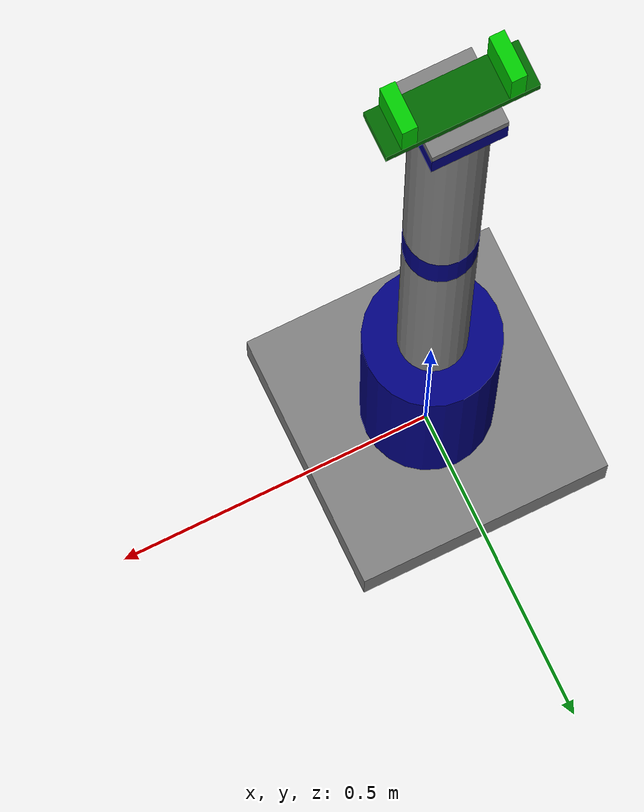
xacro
<?xml version="1.0"?>
<robot xmlns:xacro="http://www.ros.org/wiki/xacro" name="my_arm_robot">
    <xacro:arg name="initial_positions_file" default="initial_positions.yaml" />

    <!-- Import my_arm_robot urdf file -->
    <xacro:include filename="$(find my_robot_description)/urdf/my_robot.urdf.xacro" />

    <!-- Import control_xacro -->
    <xacro:include filename="my_arm_robot.ros2_control.xacro" />

    <xacro:my_arm_robot_ros2_control name="FakeSystem" initial_positions_file="$(arg initial_positions_file)"/>

</robot>

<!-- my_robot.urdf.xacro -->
<robot name="my_arm_robot"
    xmlns:xacro="http://www.ros.org/wiki/xacro">

    <xacro:include filename="common_properties.xacro"/>
    <xacro:include filename="arm.urdf.xacro"/>

    <xacro:include filename="gripper.xacro"/>

    <xacro:include filename="my_arm_robot.ros2_control.xacro"/>

    <joint name="gripper_base_joint" type="fixed">
        <parent link="tool_link"/>
        <child link="gripper_base_link"/>
        <origin xyz="0 0 0" rpy="0 0 0"/>
    </joint>
</robot>

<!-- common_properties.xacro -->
<robot xmlns:xacro="http://www.ros.org/wiki/xacro">

    <material name="grey">
        <color rgba="0.5 0.5 0.5 1"/>
    </material>

    <material name="blue">
        <color rgba="0 0 0.5 1"/>
    </material>

    <material name="dark_green">
        <color rgba="0 0.4 0 1"/>
    </material>

    <material name="light_green">
        <color rgba="0 0.8 0 1"/>
    </material>

</robot>

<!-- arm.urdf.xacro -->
<robot xmlns:xacro="http://www.ros.org/wiki/xacro">

    <link name="base_link">
        <visual>
            <geometry>
                <box size="0.4 0.4 0.1"/>
            </geometry>
            <origin xyz="0 0 0.05" rpy="0 0 0"/>
            <material name="grey"/>
        </visual>
        <collision>
            <geometry>
                <box size="0.4 0.4 0.1"/>
            </geometry>
            <origin xyz="0 0 0.05" rpy="0 0 0"/>
        </collision>
    </link>

    <link name="shoulder_link">
        <visual>
            <geometry>
                <cylinder radius="0.1" length="0.5"/>
            </geometry>
            <origin xyz="0 0 0.25" rpy="0 0 0"/>
            <material name="blue"/>
        </visual>
        <collision>
            <geometry>
                <box size="0.2 0.2 0.5"/>
            </geometry>
            <origin xyz="0 0 0.25" rpy="0 0 0"/>
        </collision>
    </link>

    <link name="arm_link">
        <visual>
            <geometry>
                <cylinder radius="0.05" length="0.6"/>
            </geometry>
            <origin xyz="0 0 0.3" rpy="0 0 0"/>
            <material name="grey"/>
        </visual>
        <collision>
            <geometry>
                <box size="0.1 0.1 0.6"/>
            </geometry>
            <origin xyz="0 0 0.3" rpy="0 0 0"/>
        </collision>
    </link>

    <link name="elbow_link">
        <visual>
            <geometry>
                <cylinder radius="0.05" length="0.1"/>
            </geometry>
            <origin xyz="0 0 0.05" rpy="0 0 0"/>
            <material name="blue"/>
        </visual>
        <collision>
            <geometry>
                <box size="0.1 0.1 0.1"/>
            </geometry>
            <origin xyz="0 0 0.05" rpy="0 0 0"/>
        </collision>
    </link>

    <link name="forearm_link">
        <visual>
            <geometry>
                <cylinder radius="0.05" length="0.6"/>
            </geometry>
            <origin xyz="0 0 0.3" rpy="0 0 0"/>
            <material name="grey"/>
        </visual>
        <collision>
            <geometry>
                <box size="0.1 0.1 0.6"/>
            </geometry>
            <origin xyz="0 0 0.3" rpy="0 0 0"/>
        </collision>
    </link>

    <link name="wrist_link">
        <visual>
            <geometry>
                <box size="0.1 0.1 0.05"/>
            </geometry>
            <origin xyz="0 0 0.025" rpy="0 0 0"/>
            <material name="blue"/>
        </visual>
        <collision>
            <geometry>
                <box size="0.1 0.1 0.05"/>
            </geometry>
            <origin xyz="0 0 0.025" rpy="0 0 0"/>
        </collision>
    </link>

    <link name="hand_link">
        <visual>
            <geometry>
                <box size="0.1 0.1 0.02"/>
            </geometry>
            <origin xyz="0 0 0.01" rpy="0 0 0"/>
            <material name="grey"/>
        </visual>
        <collision>
            <geometry>
                <box size="0.1 0.1 0.02"/>
            </geometry>
            <origin xyz="0 0 0.01" rpy="0 0 0"/>
        </collision>
    </link>

    <link name="tool_link"/>

    <joint name="joint1" type="revolute">  #旋转关节
        <parent link="base_link"/>
        <child link="shoulder_link"/>
        <origin xyz="0 0 0.1" rpy="0 0 0"/> #偏离原点
        <axis xyz="0 0 1"/>  #旋转轴
        <limit lower="-3.14" upper="3.14" effort="1000" velocity="1.57"/> #位置上下限，力矩，速度
    </joint>

    <joint name="joint2" type="revolute">
        <parent link="shoulder_link"/>
        <child link="arm_link"/>
        <origin xyz="0 0 0.5" rpy="0 0 0"/>
        <axis xyz="0 1 0"/>
        <limit lower="0" upper="2.5" effort="1000" velocity="1.57"/>
    </joint>

    <joint name="joint3" type="revolute">
        <parent link="arm_link"/>
        <child link="elbow_link"/>
        <origin xyz="0 0 0.6" rpy="0 0 0"/>
        <axis xyz="0 1 0"/>
        <limit lower="0" upper="2.5" effort="1000" velocity="1.57"/>
    </joint>

    <joint name="joint4" type="revolute">
        <parent link="elbow_link"/>
        <child link="forearm_link"/>
        <origin xyz="0 0 0.1" rpy="0 0 0"/>
        <axis xyz="0 0 1"/>
        <limit lower="-3.14" upper="3.14" effort="1000" velocity="1.57"/>
    </joint>

    <joint name="joint5" type="revolute">
        <parent link="forearm_link"/>
        <child link="wrist_link"/>
        <origin xyz="0 0 0.6" rpy="0 0 0"/>
        <axis xyz="0 1 0"/>
        <limit lower="-1.57" upper="1.57" effort="1000" velocity="1.57"/>
    </joint>

    <joint name="joint6" type="continuous"> #连续旋转关节
        <parent link="wrist_link"/>
        <child link="hand_link"/>
        <origin xyz="0 0 0.05" rpy="0 0 0"/>
        <axis xyz="0 0 1"/>
        <limit effort="1000" velocity="1.57"/>
    </joint>

    <joint name="hand_tool_joint" type="fixed"> #固定关节
        <parent link="hand_link"/>
        <child link="tool_link"/>
        <origin xyz="0 0 0.02" rpy="0 0 0"/>
    </joint>

</robot>

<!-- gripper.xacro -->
<robot xmlns:xacro="http://www.ros.org/wiki/xacro">

    <link name="gripper_base_link">
        <visual>
            <geometry>
                <box size="0.2 0.06 0.02"/>
            </geometry>
            <origin xyz="0 0 0.01" rpy="0 0 0"/>
            <material name="dark_green"/>
        </visual>
        <collision>
            <geometry>
                <box size="0.2 0.06 0.02"/>
            </geometry>
            <origin xyz="0 0 0.01" rpy="0 0 0"/>
        </collision>
    </link>

    <link name="gripper_left_finger_link">
        <visual>
            <geometry>
                <box size="0.02 0.06 0.08"/>
            </geometry>
            <origin xyz="0 0 0.04" rpy="0 0 0"/>
            <material name="light_green"/>
        </visual>
        <collision>
            <geometry>
                <box size="0.02 0.06 0.02"/>
            </geometry>
            <origin xyz="0 0 0.04" rpy="0 0 0"/>
        </collision>
    </link>

    <link name="gripper_right_finger_link">
        <visual>
            <geometry>
                <box size="0.02 0.06 0.08"/>
            </geometry>
            <origin xyz="0 0 0.04" rpy="0 0 0"/>
            <material name="light_green"/>
        </visual>
        <collision>
            <geometry>
                <box size="0.02 0.06 0.02"/>
            </geometry>
            <origin xyz="0 0 0.04" rpy="0 0 0"/>
        </collision>
    </link>

    <joint name="gripper_left_finger_joint" type="prismatic"> # 滑动关节
        <parent link="gripper_base_link"/>
        <child link="gripper_left_finger_link"/>
        <origin xyz="-0.07 0 0.02" rpy="0 0 0"/>
        <axis xyz="1 0 0"/>
        <limit lower="0.0" upper="0.06" effort="1000" velocity="1.57"/>
    </joint>

    <joint name="gripper_right_finger_joint" type="prismatic">
        <parent link="gripper_base_link"/>
        <child link="gripper_right_finger_link"/>
        <origin xyz="0.07 0 0.02" rpy="0 0 0"/>
        <axis xyz="1 0 0"/>
        <mimic joint="gripper_left_finger_joint" multiplier="-1.0"/> # 模拟(模仿)关节，相反方向
        <limit lower="-0.06" upper="0.0" effort="1000" velocity="1.57"/>
    </joint>

</robot>
